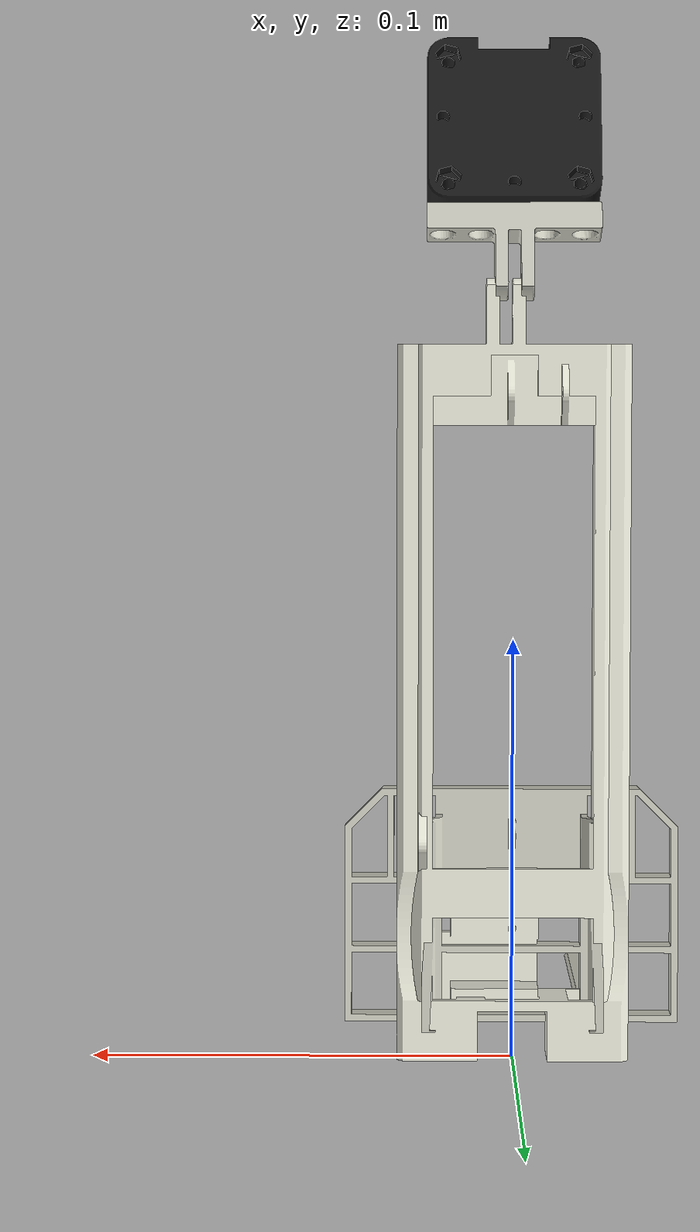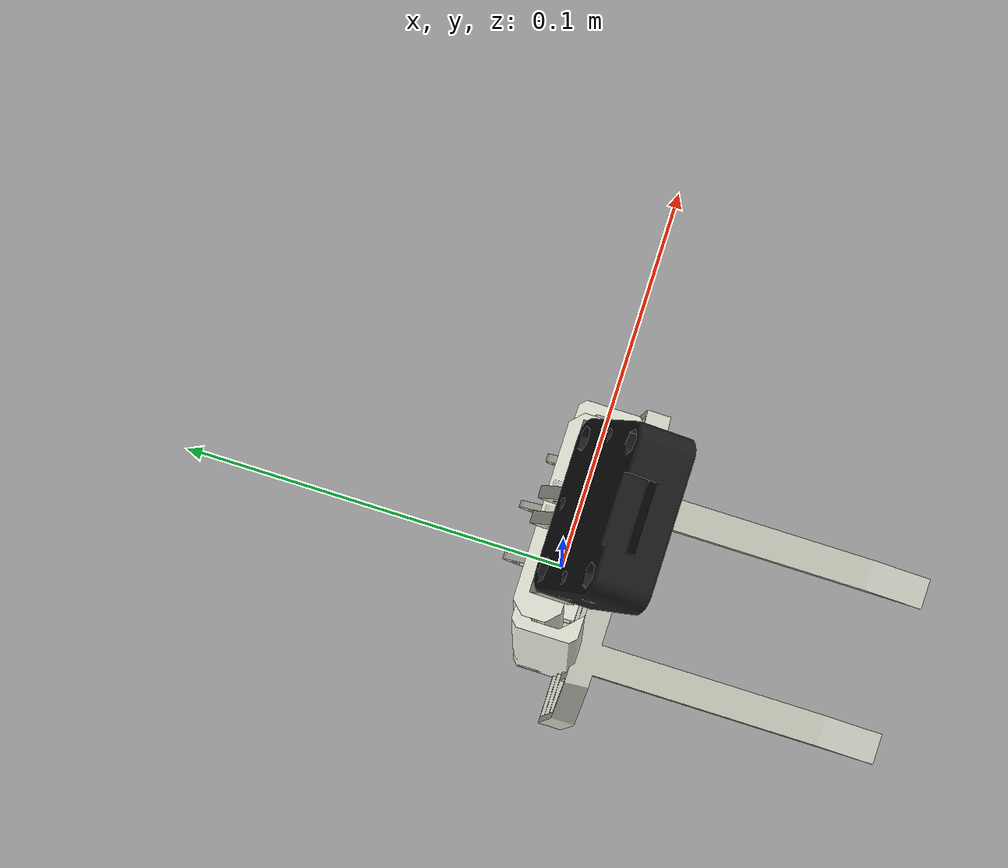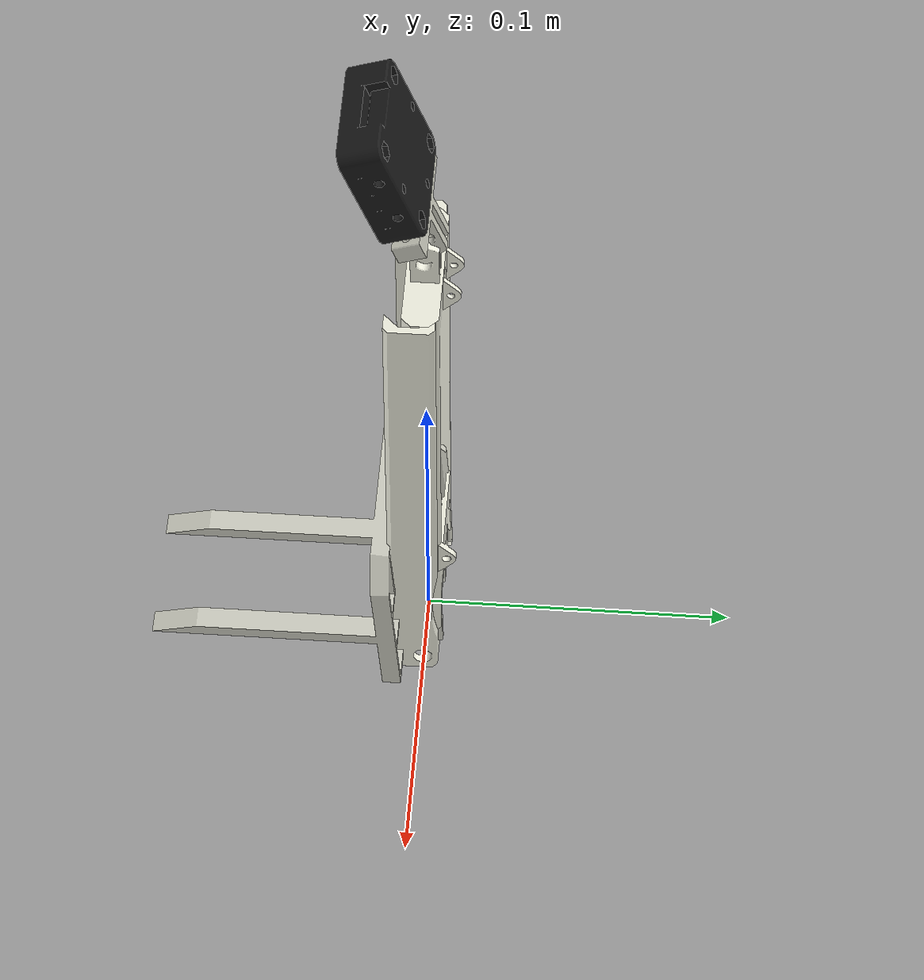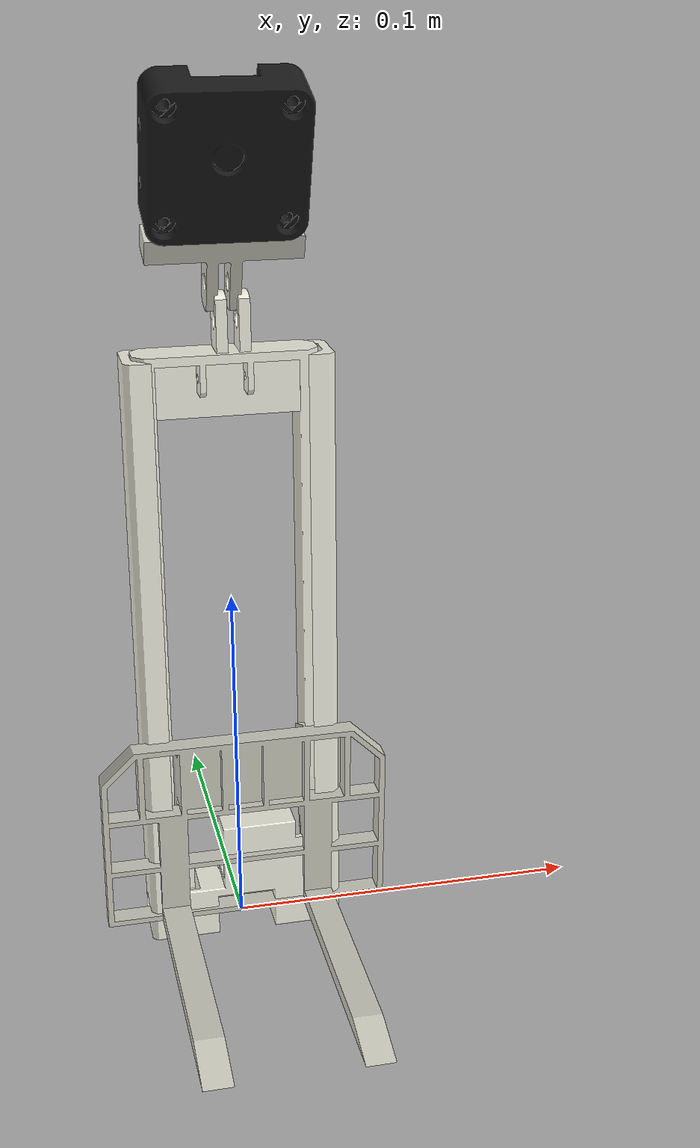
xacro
<?xml version="1.0"?>
<robot name="lifter" xmlns:xacro="http://ros.org/wiki/xacro">

  <!-- mm → m -->
  <xacro:property name="s" value="0.001"/>

  <!-- ═══════════════════════ LINKS ═══════════════════════ -->

  <link name="world"/>

  <link name="lifter_base_link">
    <visual>
      <origin xyz="-0.1125 -0.0112 0.1125" rpy="1.5708 3.14159 3.14159"/>
      <geometry>
        <mesh filename="package://description/meshes/lifter/outer_mast.stl"
              scale="${s} ${s} ${s}"/>
      </geometry>
      <material name="off_white">
        <color rgba="0.93 0.93 0.87 1.0"/>
      </material>
    </visual>
    <inertial>
      <mass value="0.5"/>
      <inertia ixx="0.01" ixy="0" ixz="0"
               iyy="0.01" iyz="0" izz="0.01"/>
    </inertial>
  </link>

  <link name="mast_inner_link">
    <visual>
      <origin xyz="-0.0655 0.0058 -0.0050" rpy="1.5708 0 0"/>
      <geometry>
        <mesh filename="package://description/meshes/lifter/mast_inner.stl"
              scale="${s} ${s} ${s}"/>
      </geometry>
      <material name="off_white">
        <color rgba="0.93 0.93 0.87 1.0"/>
      </material>
    </visual>
    <inertial>
      <mass value="0.3"/>
      <inertia ixx="0.005" ixy="0" ixz="0"
               iyy="0.005" iyz="0" izz="0.005"/>
    </inertial>
  </link>

  <link name="carriage_link">
    <visual>
      <origin xyz="-0.1125 -0.11343 -0.02793" rpy="0 0 0"/>
      <geometry>
        <mesh filename="package://description/meshes/lifter/carriage.stl"
              scale="${s} ${s} ${s}"/>
      </geometry>
      <material name="light_grey">
        <color rgba="0.80 0.80 0.75 1.0"/>
      </material>
    </visual>
    <inertial>
      <mass value="0.2"/>
      <inertia ixx="0.001" ixy="0" ixz="0"
               iyy="0.001" iyz="0" izz="0.001"/>
    </inertial>
  </link>

  <link name="cam_holder_link">
    <visual>
      <origin xyz="0.0285 -0.0055 0.0715" rpy="-1.5708 0 0"/>
      <geometry>
        <mesh filename="package://description/meshes/lifter/camera_holder.stl"
              scale="${s} ${s} ${s}"/>
      </geometry>
      <material name="light_grey">
        <color rgba="0.80 0.80 0.75 1.0"/>
      </material>
    </visual>
    <inertial>
      <mass value="0.01"/>
      <inertia ixx="1e-6" ixy="0" ixz="0" iyy="1e-6" iyz="0" izz="1e-6"/>
    </inertial>
  </link>

  <!-- Mast camera (camera.stl) — fixed to pan holder, rotates with it -->
  <link name="mast_camera_link">
    <visual>
      <origin xyz="-0.0005 0.0290 0.0005" rpy="-1.5708 0 3.14159"/>
      <geometry>
        <mesh filename="package://description/meshes/lifter/camera.stl"
              scale="${s} ${s} ${s}"/>
      </geometry>
      <material name="black">
        <color rgba="0.1 0.1 0.1 1.0"/>
      </material>
    </visual>
    <inertial>
      <mass value="0.01"/>
      <inertia ixx="1e-6" ixy="0" ixz="0" iyy="1e-6" iyz="0" izz="1e-6"/>
    </inertial>
  </link>

  <!-- ═══════════════════════ JOINTS ═══════════════════════ -->

  <!-- world → lifter_base (fixed)
       Z=0.085 raises the outer mast so its bottom sits at z=0 (ground).
       Outer mast is 170mm tall, half-height = 85mm. -->
  <joint name="world_to_lifter_base" type="fixed">
    <parent link="world"/>
    <child  link="lifter_base_link"/>
    <origin xyz="0 0 0.085" rpy="0 0 0"/>
  </joint>

  <!-- Prismatic joint 1: outer mast → inner mast
       origin at (0,0,0) keeps inner mast centred inside the outer mast.
       Inner mast (155mm) is fully nested when joint=0; rises in +Z. -->
  <joint name="mast_inner_joint" type="prismatic">
    <parent link="lifter_base_link"/>
    <child  link="mast_inner_link"/>
    <origin xyz="0 0 0" rpy="0 0 0"/>
    <axis xyz="0 0 1"/>
    <limit lower="0.0" upper="0.10" effort="100.0" velocity="0.10"/>
  </joint>

  <joint name="carriage_joint" type="prismatic">
    <parent link="mast_inner_link"/>
    <child  link="carriage_link"/>
    <origin xyz="0 -0.0420 -0.0498" rpy="0 0 0"/>
    <axis xyz="0 0 1"/>
    <limit lower="0.0" upper="0.10" effort="50.0" velocity="0.10"/>
  </joint>

  <!-- Pan holder: revolute X at top of inner mast (z=0.085 ≈ mast top at 85.5mm) -->
  <joint name="cam_holder_joint" type="fixed">
    <parent link="mast_inner_link"/>
    <child  link="cam_holder_link"/>
    <origin xyz="0 0 0.105" rpy="0.3491 0 0"/>  <!-- tilt camara 20deg hacia abajo (antes 45deg=0.7854) -->
  </joint>

  <!-- Camera: fixed to pan holder, sits on top of bracket
       z=0.030: bracket top (0.0225) + half camera height (0.007) = 0.0295 ≈ 0.030m -->
  <joint name="mast_camera_joint" type="fixed">
    <parent link="cam_holder_link"/>
    <child  link="mast_camera_link"/>
    <origin xyz="0 0 0.033" rpy="0 0 0"/>
  </joint>

  <!-- ═══════════════════════ MATERIALS ═══════════════════════ -->
  <material name="off_white">
    <color rgba="0.93 0.93 0.87 1.0"/>
  </material>
  <material name="light_grey">
    <color rgba="0.80 0.80 0.75 1.0"/>
  </material>
  <material name="black">
    <color rgba="0.1 0.1 0.1 1.0"/>
  </material>

</robot>
